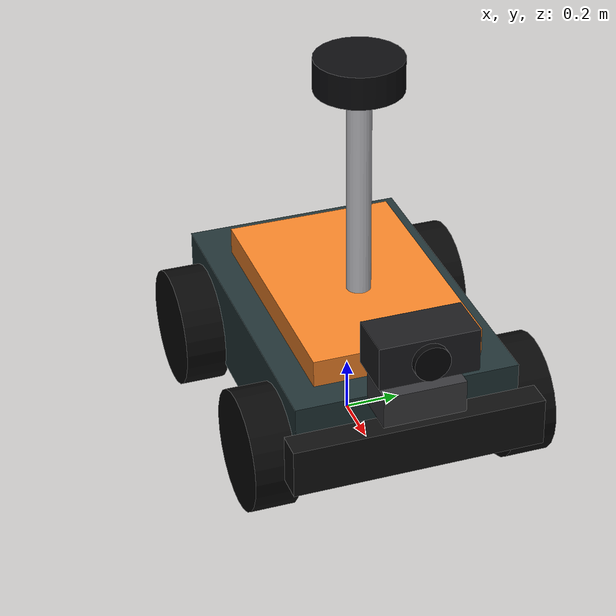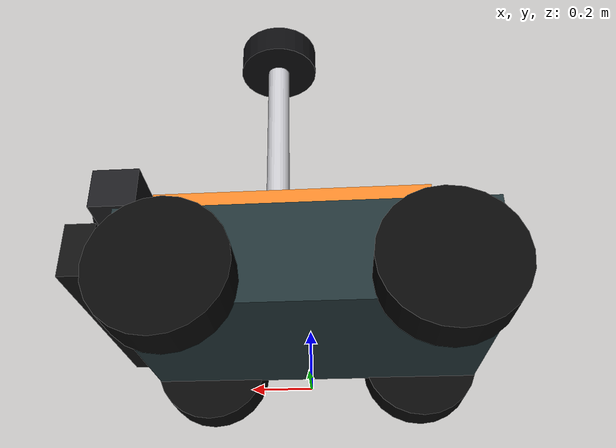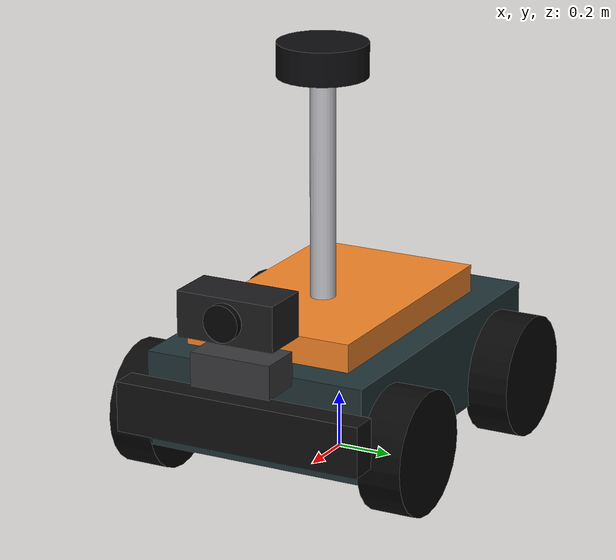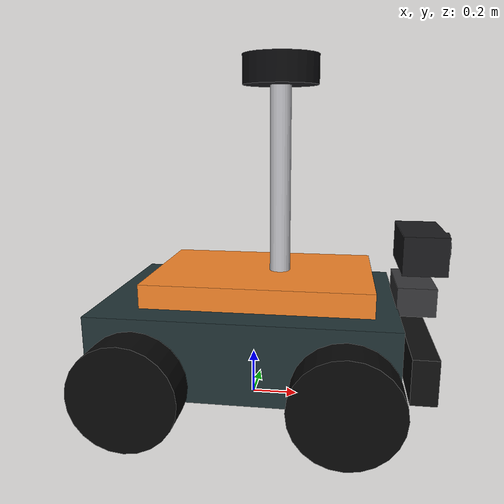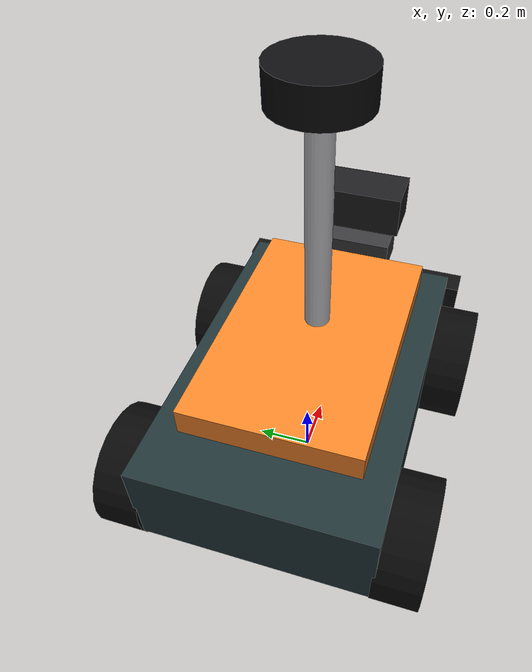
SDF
<?xml version="1.0" ?>
<sdf version="1.9">
  <model name="inspection_rover">
    <static>false</static>
    <self_collide>false</self_collide>

    <link name="base_link">
      <pose>0 0 0.32 0 0 0</pose>
      <inertial>
        <mass>38.0</mass>
        <inertia>
          <ixx>2.0</ixx>
          <iyy>3.0</iyy>
          <izz>3.8</izz>
          <ixy>0.0</ixy>
          <ixz>0.0</ixz>
          <iyz>0.0</iyz>
        </inertia>
      </inertial>

      <collision name="chassis_collision">
        <geometry>
          <box>
            <size>1.25 0.82 0.34</size>
          </box>
        </geometry>
      </collision>

      <visual name="chassis_visual">
        <geometry>
          <box>
            <size>1.25 0.82 0.34</size>
          </box>
        </geometry>
        <material>
          <ambient>0.10 0.14 0.15 1</ambient>
          <diffuse>0.13 0.20 0.21 1</diffuse>
          <specular>0.05 0.07 0.08 1</specular>
        </material>
      </visual>

      <visual name="top_deck">
        <pose>0.05 0 0.23 0 0 0</pose>
        <geometry>
          <box>
            <size>0.95 0.62 0.10</size>
          </box>
        </geometry>
        <material>
          <ambient>0.88 0.46 0.12 1</ambient>
          <diffuse>0.96 0.52 0.16 1</diffuse>
        </material>
      </visual>

      <visual name="front_bumper">
        <pose>0.70 0 0.0 0 0 0</pose>
        <geometry>
          <box>
            <size>0.10 0.92 0.18</size>
          </box>
        </geometry>
        <material>
          <ambient>0.04 0.04 0.04 1</ambient>
          <diffuse>0.06 0.06 0.06 1</diffuse>
        </material>
      </visual>

      <sensor name="base_imu" type="imu">
        <pose>0 0 0.28 0 0 0</pose>
        <topic>/ugv_1/imu</topic>
        <always_on>true</always_on>
        <update_rate>100</update_rate>
      </sensor>
    </link>

    <link name="left_front_wheel">
      <pose>0.42 0.48 0.22 1.5708 0 0</pose>
      <inertial>
        <mass>2.0</mass>
        <inertia>
          <ixx>0.04</ixx>
          <iyy>0.04</iyy>
          <izz>0.04</izz>
          <ixy>0.0</ixy>
          <ixz>0.0</ixz>
          <iyz>0.0</iyz>
        </inertia>
      </inertial>
      <collision name="collision">
        <geometry>
          <cylinder>
            <radius>0.22</radius>
            <length>0.16</length>
          </cylinder>
        </geometry>
        <surface>
          <friction>
            <ode>
              <mu>1.0</mu>
              <mu2>1.0</mu2>
            </ode>
          </friction>
        </surface>
      </collision>
      <visual name="visual">
        <geometry>
          <cylinder>
            <radius>0.22</radius>
            <length>0.16</length>
          </cylinder>
        </geometry>
        <material>
          <ambient>0.02 0.02 0.02 1</ambient>
          <diffuse>0.03 0.03 0.03 1</diffuse>
        </material>
      </visual>
    </link>

    <link name="left_rear_wheel">
      <pose>-0.42 0.48 0.22 1.5708 0 0</pose>
      <inertial>
        <mass>2.0</mass>
        <inertia>
          <ixx>0.04</ixx>
          <iyy>0.04</iyy>
          <izz>0.04</izz>
          <ixy>0.0</ixy>
          <ixz>0.0</ixz>
          <iyz>0.0</iyz>
        </inertia>
      </inertial>
      <collision name="collision">
        <geometry>
          <cylinder>
            <radius>0.22</radius>
            <length>0.16</length>
          </cylinder>
        </geometry>
        <surface>
          <friction>
            <ode>
              <mu>1.0</mu>
              <mu2>1.0</mu2>
            </ode>
          </friction>
        </surface>
      </collision>
      <visual name="visual">
        <geometry>
          <cylinder>
            <radius>0.22</radius>
            <length>0.16</length>
          </cylinder>
        </geometry>
        <material>
          <ambient>0.02 0.02 0.02 1</ambient>
          <diffuse>0.03 0.03 0.03 1</diffuse>
        </material>
      </visual>
    </link>

    <link name="right_front_wheel">
      <pose>0.42 -0.48 0.22 1.5708 0 0</pose>
      <inertial>
        <mass>2.0</mass>
        <inertia>
          <ixx>0.04</ixx>
          <iyy>0.04</iyy>
          <izz>0.04</izz>
          <ixy>0.0</ixy>
          <ixz>0.0</ixz>
          <iyz>0.0</iyz>
        </inertia>
      </inertial>
      <collision name="collision">
        <geometry>
          <cylinder>
            <radius>0.22</radius>
            <length>0.16</length>
          </cylinder>
        </geometry>
        <surface>
          <friction>
            <ode>
              <mu>1.0</mu>
              <mu2>1.0</mu2>
            </ode>
          </friction>
        </surface>
      </collision>
      <visual name="visual">
        <geometry>
          <cylinder>
            <radius>0.22</radius>
            <length>0.16</length>
          </cylinder>
        </geometry>
        <material>
          <ambient>0.02 0.02 0.02 1</ambient>
          <diffuse>0.03 0.03 0.03 1</diffuse>
        </material>
      </visual>
    </link>

    <link name="right_rear_wheel">
      <pose>-0.42 -0.48 0.22 1.5708 0 0</pose>
      <inertial>
        <mass>2.0</mass>
        <inertia>
          <ixx>0.04</ixx>
          <iyy>0.04</iyy>
          <izz>0.04</izz>
          <ixy>0.0</ixy>
          <ixz>0.0</ixz>
          <iyz>0.0</iyz>
        </inertia>
      </inertial>
      <collision name="collision">
        <geometry>
          <cylinder>
            <radius>0.22</radius>
            <length>0.16</length>
          </cylinder>
        </geometry>
        <surface>
          <friction>
            <ode>
              <mu>1.0</mu>
              <mu2>1.0</mu2>
            </ode>
          </friction>
        </surface>
      </collision>
      <visual name="visual">
        <geometry>
          <cylinder>
            <radius>0.22</radius>
            <length>0.16</length>
          </cylinder>
        </geometry>
        <material>
          <ambient>0.02 0.02 0.02 1</ambient>
          <diffuse>0.03 0.03 0.03 1</diffuse>
        </material>
      </visual>
    </link>

    <joint name="left_front_wheel_joint" type="revolute">
      <parent>base_link</parent>
      <child>left_front_wheel</child>
      <axis>
        <xyz>0 1 0</xyz>
        <limit>
          <lower>-1e16</lower>
          <upper>1e16</upper>
        </limit>
      </axis>
    </joint>

    <joint name="left_rear_wheel_joint" type="revolute">
      <parent>base_link</parent>
      <child>left_rear_wheel</child>
      <axis>
        <xyz>0 1 0</xyz>
        <limit>
          <lower>-1e16</lower>
          <upper>1e16</upper>
        </limit>
      </axis>
    </joint>

    <joint name="right_front_wheel_joint" type="revolute">
      <parent>base_link</parent>
      <child>right_front_wheel</child>
      <axis>
        <xyz>0 1 0</xyz>
        <limit>
          <lower>-1e16</lower>
          <upper>1e16</upper>
        </limit>
      </axis>
    </joint>

    <joint name="right_rear_wheel_joint" type="revolute">
      <parent>base_link</parent>
      <child>right_rear_wheel</child>
      <axis>
        <xyz>0 1 0</xyz>
        <limit>
          <lower>-1e16</lower>
          <upper>1e16</upper>
        </limit>
      </axis>
    </joint>

    <link name="sensor_mast">
      <pose>0.12 0 0.95 0 0 0</pose>
      <inertial>
        <mass>1.5</mass>
        <inertia>
          <ixx>0.08</ixx>
          <iyy>0.08</iyy>
          <izz>0.02</izz>
          <ixy>0.0</ixy>
          <ixz>0.0</ixz>
          <iyz>0.0</iyz>
        </inertia>
      </inertial>
      <collision name="mast_collision">
        <geometry>
          <cylinder>
            <radius>0.045</radius>
            <length>0.9</length>
          </cylinder>
        </geometry>
      </collision>
      <visual name="mast_visual">
        <geometry>
          <cylinder>
            <radius>0.045</radius>
            <length>0.9</length>
          </cylinder>
        </geometry>
        <material>
          <ambient>0.65 0.65 0.66 1</ambient>
          <diffuse>0.78 0.78 0.80 1</diffuse>
        </material>
      </visual>
    </link>

    <joint name="sensor_mast_joint" type="fixed">
      <parent>base_link</parent>
      <child>sensor_mast</child>
    </joint>

    <link name="lidar_link">
      <pose>0.12 0 1.45 0 0 0</pose>
      <inertial>
        <mass>0.7</mass>
        <inertia>
          <ixx>0.01</ixx>
          <iyy>0.01</iyy>
          <izz>0.01</izz>
          <ixy>0.0</ixy>
          <ixz>0.0</ixz>
          <iyz>0.0</iyz>
        </inertia>
      </inertial>
      <collision name="lidar_collision">
        <geometry>
          <cylinder>
            <radius>0.16</radius>
            <length>0.12</length>
          </cylinder>
        </geometry>
      </collision>
      <visual name="lidar_visual">
        <geometry>
          <cylinder>
            <radius>0.16</radius>
            <length>0.12</length>
          </cylinder>
        </geometry>
        <material>
          <ambient>0.02 0.02 0.025 1</ambient>
          <diffuse>0.05 0.05 0.06 1</diffuse>
        </material>
      </visual>
      <sensor name="lidar" type="gpu_lidar">
        <pose>0 0 0.08 0 0 0</pose>
        <topic>/ugv_1/scan</topic>
        <always_on>true</always_on>
        <update_rate>10</update_rate>
        <lidar>
          <scan>
            <horizontal>
              <samples>720</samples>
              <resolution>1</resolution>
              <min_angle>-3.14159</min_angle>
              <max_angle>3.14159</max_angle>
            </horizontal>
          </scan>
          <range>
            <min>0.12</min>
            <max>40.0</max>
            <resolution>0.02</resolution>
          </range>
          <noise>
            <type>gaussian</type>
            <mean>0.0</mean>
            <stddev>0.01</stddev>
          </noise>
        </lidar>
      </sensor>
    </link>

    <joint name="lidar_joint" type="fixed">
      <parent>sensor_mast</parent>
      <child>lidar_link</child>
    </joint>

    <link name="camera_link">
      <pose>0.72 0 0.72 0 0 0</pose>
      <inertial>
        <mass>0.9</mass>
        <inertia>
          <ixx>0.02</ixx>
          <iyy>0.02</iyy>
          <izz>0.02</izz>
          <ixy>0.0</ixy>
          <ixz>0.0</ixz>
          <iyz>0.0</iyz>
        </inertia>
      </inertial>
      <collision name="camera_collision">
        <geometry>
          <box>
            <size>0.18 0.36 0.16</size>
          </box>
        </geometry>
      </collision>
      <visual name="camera_housing">
        <geometry>
          <box>
            <size>0.18 0.36 0.16</size>
          </box>
        </geometry>
        <material>
          <ambient>0.08 0.08 0.085 1</ambient>
          <diffuse>0.11 0.11 0.12 1</diffuse>
        </material>
      </visual>
      <visual name="camera_lens">
        <pose>0.10 0 0 0 1.5708 0</pose>
        <geometry>
          <cylinder>
            <radius>0.065</radius>
            <length>0.035</length>
          </cylinder>
        </geometry>
        <material>
          <ambient>0.01 0.01 0.012 1</ambient>
          <diffuse>0.02 0.02 0.025 1</diffuse>
        </material>
      </visual>
      <sensor name="rgb_camera" type="camera">
        <pose>0.11 0 0 0 0 0</pose>
        <topic>/ugv_1/camera/image_raw</topic>
        <always_on>true</always_on>
        <update_rate>20</update_rate>
        <camera>
          <horizontal_fov>1.047</horizontal_fov>
          <image>
            <width>1280</width>
            <height>720</height>
            <format>R8G8B8</format>
          </image>
          <clip>
            <near>0.1</near>
            <far>80.0</far>
          </clip>
        </camera>
      </sensor>
    </link>

    <joint name="camera_joint" type="fixed">
      <parent>base_link</parent>
      <child>camera_link</child>
    </joint>

    <link name="depth_camera_link">
      <pose>0.70 0 0.52 0 0 0</pose>
      <inertial>
        <mass>0.8</mass>
        <inertia>
          <ixx>0.02</ixx>
          <iyy>0.02</iyy>
          <izz>0.02</izz>
          <ixy>0.0</ixy>
          <ixz>0.0</ixz>
          <iyz>0.0</iyz>
        </inertia>
      </inertial>
      <collision name="depth_camera_collision">
        <geometry>
          <box>
            <size>0.16 0.30 0.12</size>
          </box>
        </geometry>
      </collision>
      <visual name="depth_camera_housing">
        <geometry>
          <box>
            <size>0.16 0.30 0.12</size>
          </box>
        </geometry>
        <material>
          <ambient>0.16 0.16 0.17 1</ambient>
          <diffuse>0.22 0.22 0.23 1</diffuse>
        </material>
      </visual>
      <sensor name="depth_camera" type="depth_camera">
        <pose>0.09 0 0 0 0 0</pose>
        <topic>/ugv_1/depth/image_raw</topic>
        <always_on>true</always_on>
        <update_rate>15</update_rate>
        <camera>
          <horizontal_fov>1.047</horizontal_fov>
          <image>
            <width>640</width>
            <height>480</height>
            <format>R_FLOAT32</format>
          </image>
          <clip>
            <near>0.2</near>
            <far>30.0</far>
          </clip>
        </camera>
      </sensor>
    </link>

    <joint name="depth_camera_joint" type="fixed">
      <parent>base_link</parent>
      <child>depth_camera_link</child>
    </joint>

    <plugin filename="gz-sim-diff-drive-system" name="gz::sim::systems::DiffDrive">
      <left_joint>left_front_wheel_joint</left_joint>
      <left_joint>left_rear_wheel_joint</left_joint>
      <right_joint>right_front_wheel_joint</right_joint>
      <right_joint>right_rear_wheel_joint</right_joint>
      <wheel_separation>0.96</wheel_separation>
      <wheel_radius>0.22</wheel_radius>
      <max_linear_acceleration>1.0</max_linear_acceleration>
      <min_linear_acceleration>-1.0</min_linear_acceleration>
      <max_angular_acceleration>1.5</max_angular_acceleration>
      <min_angular_acceleration>-1.5</min_angular_acceleration>
      <topic>/ugv_1/cmd_vel</topic>
      <odom_topic>/ugv_1/odom</odom_topic>
      <tf_topic>/ugv_1/tf</tf_topic>
      <frame_id>ugv_1/odom</frame_id>
      <child_frame_id>ugv_1/base_link</child_frame_id>
      <odom_publish_frequency>30</odom_publish_frequency>
    </plugin>
  </model>
</sdf>
